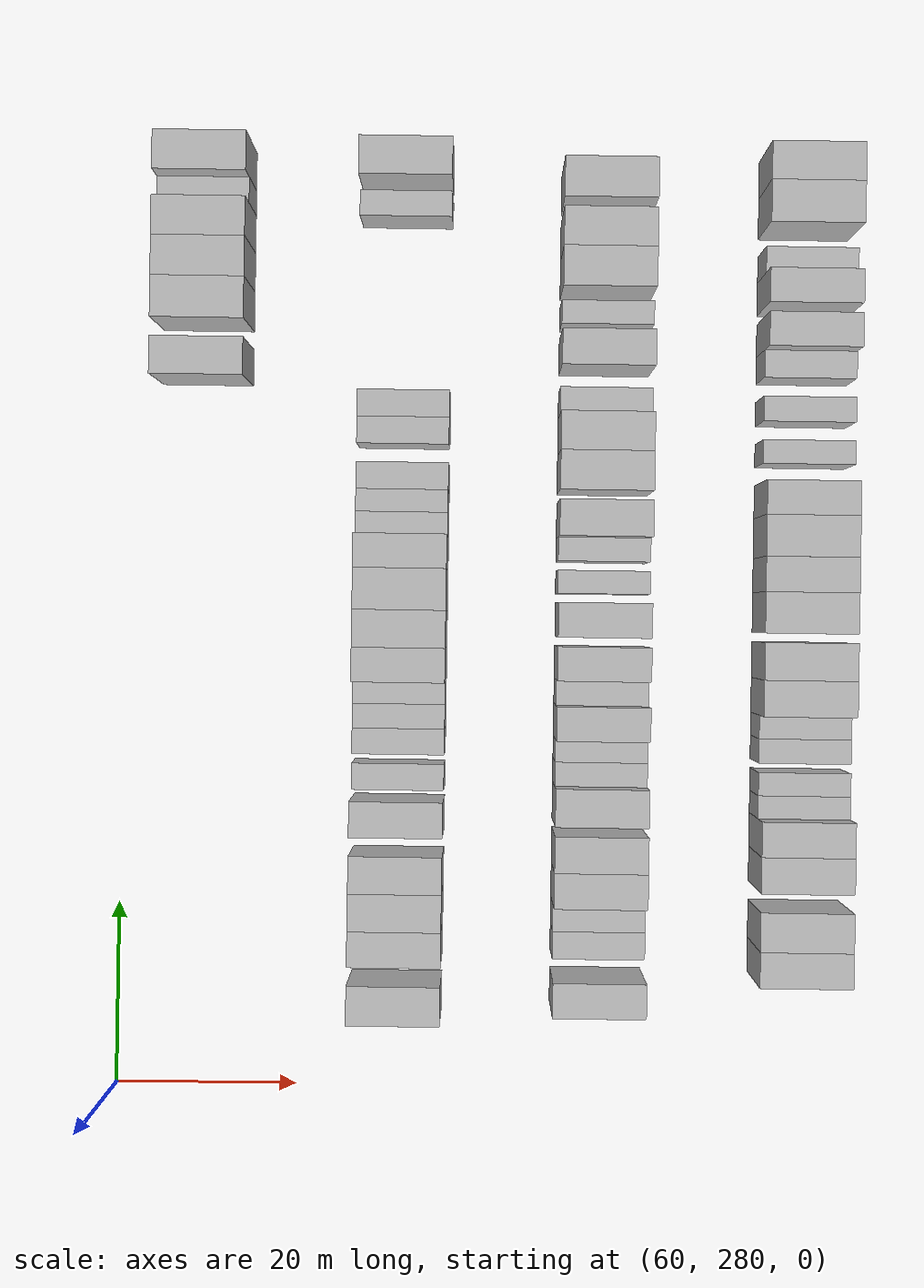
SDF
<sdf version="1.6">
 <world name="default">
  <model name="building_580">
   <static>1</static>
   <pose>69.0000 359.6786 0 0.000000 0.000000 0.000000</pose>
   <link name="link">
    <pose>0 0 4.50 0 0 0</pose>
    <collision name="collision"><geometry><box><size>10.0000 4.0316 9.0000</size></box></geometry></collision>
    <visual name="visual">
     <cast_shadows>0</cast_shadows>
     <geometry><box><size>10.0000 4.0316 9.0000</size></box></geometry>
     <material>
      <script>
       <uri>model://HANNAS_wall/materials/scripts</uri>
       <uri>model://HANNAS_wall/materials/textures</uri>
       <name>vrc/HANNAS_wall</name>
      </script>
     </material>
    </visual>
   </link>
  </model>
  <model name="building_581">
   <static>1</static>
   <pose>69.0000 365.9146 0 0.000000 0.000000 0.000000</pose>
   <link name="link">
    <pose>0 0 4.50 0 0 0</pose>
    <collision name="collision"><geometry><box><size>10.0000 4.4406 9.0000</size></box></geometry></collision>
    <visual name="visual">
     <cast_shadows>0</cast_shadows>
     <geometry><box><size>10.0000 4.4406 9.0000</size></box></geometry>
     <material>
      <script>
       <uri>model://HANNAS_wall/materials/scripts</uri>
       <uri>model://HANNAS_wall/materials/textures</uri>
       <name>vrc/HANNAS_wall</name>
      </script>
     </material>
    </visual>
   </link>
  </model>
  <model name="building_582">
   <static>1</static>
   <pose>69.0000 370.2883 0 0.000000 0.000000 0.000000</pose>
   <link name="link">
    <pose>0 0 4.50 0 0 0</pose>
    <collision name="collision"><geometry><box><size>10.0000 4.3068 9.0000</size></box></geometry></collision>
    <visual name="visual">
     <cast_shadows>0</cast_shadows>
     <geometry><box><size>10.0000 4.3068 9.0000</size></box></geometry>
     <material>
      <script>
       <uri>model://HANNAS_wall/materials/scripts</uri>
       <uri>model://HANNAS_wall/materials/textures</uri>
       <name>vrc/HANNAS_wall</name>
      </script>
     </material>
    </visual>
   </link>
  </model>
  <model name="building_583">
   <static>1</static>
   <pose>69.0000 374.5498 0 0.000000 0.000000 0.000000</pose>
   <link name="link">
    <pose>0 0 4.50 0 0 0</pose>
    <collision name="collision"><geometry><box><size>10.0000 4.2161 9.0000</size></box></geometry></collision>
    <visual name="visual">
     <cast_shadows>0</cast_shadows>
     <geometry><box><size>10.0000 4.2161 9.0000</size></box></geometry>
     <material>
      <script>
       <uri>model://HANNAS_wall/materials/scripts</uri>
       <uri>model://HANNAS_wall/materials/textures</uri>
       <name>vrc/HANNAS_wall</name>
      </script>
     </material>
    </visual>
   </link>
  </model>
  <model name="building_584">
   <static>1</static>
   <pose>69.0000 378.0378 0 0.000000 0.000000 0.000000</pose>
   <link name="link">
    <pose>0 0 3.00 0 0 0</pose>
    <collision name="collision"><geometry><box><size>10.0000 2.7599 6.0000</size></box></geometry></collision>
    <visual name="visual">
     <cast_shadows>0</cast_shadows>
     <geometry><box><size>10.0000 2.7599 6.0000</size></box></geometry>
     <material>
      <script>
       <uri>model://HANNAS_wall/materials/scripts</uri>
       <uri>model://HANNAS_wall/materials/textures</uri>
       <name>vrc/HANNAS_wall</name>
      </script>
     </material>
    </visual>
   </link>
  </model>
  <model name="building_585">
   <static>1</static>
   <pose>69.0000 381.5200 0 0.000000 0.000000 0.000000</pose>
   <link name="link">
    <pose>0 0 4.50 0 0 0</pose>
    <collision name="collision"><geometry><box><size>10.0000 4.2044 9.0000</size></box></geometry></collision>
    <visual name="visual">
     <cast_shadows>0</cast_shadows>
     <geometry><box><size>10.0000 4.2044 9.0000</size></box></geometry>
     <material>
      <script>
       <uri>model://HANNAS_wall/materials/scripts</uri>
       <uri>model://HANNAS_wall/materials/textures</uri>
       <name>vrc/HANNAS_wall</name>
      </script>
     </material>
    </visual>
   </link>
  </model>
  <model name="building_759">
   <static>1</static>
   <pose>91.0000 290.7322 0 0.000000 0.000000 0.000000</pose>
   <link name="link">
    <pose>0 0 4.50 0 0 0</pose>
    <collision name="collision"><geometry><box><size>10.0000 4.2007 9.0000</size></box></geometry></collision>
    <visual name="visual">
     <cast_shadows>0</cast_shadows>
     <geometry><box><size>10.0000 4.2007 9.0000</size></box></geometry>
     <material>
      <script>
       <uri>model://HANNAS_wall/materials/scripts</uri>
       <uri>model://HANNAS_wall/materials/textures</uri>
       <name>vrc/HANNAS_wall</name>
      </script>
     </material>
    </visual>
   </link>
  </model>
  <model name="building_760">
   <static>1</static>
   <pose>91.0000 296.7273 0 0.000000 0.000000 0.000000</pose>
   <link name="link">
    <pose>0 0 4.50 0 0 0</pose>
    <collision name="collision"><geometry><box><size>10.0000 3.7895 9.0000</size></box></geometry></collision>
    <visual name="visual">
     <cast_shadows>0</cast_shadows>
     <geometry><box><size>10.0000 3.7895 9.0000</size></box></geometry>
     <material>
      <script>
       <uri>model://HANNAS_wall/materials/scripts</uri>
       <uri>model://HANNAS_wall/materials/textures</uri>
       <name>vrc/HANNAS_wall</name>
      </script>
     </material>
    </visual>
   </link>
  </model>
  <model name="building_761">
   <static>1</static>
   <pose>91.0000 300.6268 0 0.000000 0.000000 0.000000</pose>
   <link name="link">
    <pose>0 0 4.50 0 0 0</pose>
    <collision name="collision"><geometry><box><size>10.0000 4.0096 9.0000</size></box></geometry></collision>
    <visual name="visual">
     <cast_shadows>0</cast_shadows>
     <geometry><box><size>10.0000 4.0096 9.0000</size></box></geometry>
     <material>
      <script>
       <uri>model://HANNAS_wall/materials/scripts</uri>
       <uri>model://HANNAS_wall/materials/textures</uri>
       <name>vrc/HANNAS_wall</name>
      </script>
     </material>
    </visual>
   </link>
  </model>
  <model name="building_762">
   <static>1</static>
   <pose>91.0000 304.6344 0 0.000000 0.000000 0.000000</pose>
   <link name="link">
    <pose>0 0 4.50 0 0 0</pose>
    <collision name="collision"><geometry><box><size>10.0000 4.0055 9.0000</size></box></geometry></collision>
    <visual name="visual">
     <cast_shadows>0</cast_shadows>
     <geometry><box><size>10.0000 4.0055 9.0000</size></box></geometry>
     <material>
      <script>
       <uri>model://HANNAS_wall/materials/scripts</uri>
       <uri>model://HANNAS_wall/materials/textures</uri>
       <name>vrc/HANNAS_wall</name>
      </script>
     </material>
    </visual>
   </link>
  </model>
  <model name="building_763">
   <static>1</static>
   <pose>91.0000 310.5492 0 0.000000 0.000000 0.000000</pose>
   <link name="link">
    <pose>0 0 4.50 0 0 0</pose>
    <collision name="collision"><geometry><box><size>10.0000 3.8241 9.0000</size></box></geometry></collision>
    <visual name="visual">
     <cast_shadows>0</cast_shadows>
     <geometry><box><size>10.0000 3.8241 9.0000</size></box></geometry>
     <material>
      <script>
       <uri>model://HANNAS_wall/materials/scripts</uri>
       <uri>model://HANNAS_wall/materials/textures</uri>
       <name>vrc/HANNAS_wall</name>
      </script>
     </material>
    </visual>
   </link>
  </model>
  <model name="building_764">
   <static>1</static>
   <pose>91.0000 314.8892 0 0.000000 0.000000 0.000000</pose>
   <link name="link">
    <pose>0 0 3.00 0 0 0</pose>
    <collision name="collision"><geometry><box><size>10.0000 2.8561 6.0000</size></box></geometry></collision>
    <visual name="visual">
     <cast_shadows>0</cast_shadows>
     <geometry><box><size>10.0000 2.8561 6.0000</size></box></geometry>
     <material>
      <script>
       <uri>model://HANNAS_wall/materials/scripts</uri>
       <uri>model://HANNAS_wall/materials/textures</uri>
       <name>vrc/HANNAS_wall</name>
      </script>
     </material>
    </visual>
   </link>
  </model>
  <model name="building_765">
   <static>1</static>
   <pose>91.0000 318.7162 0 0.000000 0.000000 0.000000</pose>
   <link name="link">
    <pose>0 0 3.00 0 0 0</pose>
    <collision name="collision"><geometry><box><size>10.0000 2.7978 6.0000</size></box></geometry></collision>
    <visual name="visual">
     <cast_shadows>0</cast_shadows>
     <geometry><box><size>10.0000 2.7978 6.0000</size></box></geometry>
     <material>
      <script>
       <uri>model://HANNAS_wall/materials/scripts</uri>
       <uri>model://HANNAS_wall/materials/textures</uri>
       <name>vrc/HANNAS_wall</name>
      </script>
     </material>
    </visual>
   </link>
  </model>
  <model name="building_766">
   <static>1</static>
   <pose>91.0000 321.4469 0 0.000000 0.000000 0.000000</pose>
   <link name="link">
    <pose>0 0 3.00 0 0 0</pose>
    <collision name="collision"><geometry><box><size>10.0000 2.6637 6.0000</size></box></geometry></collision>
    <visual name="visual">
     <cast_shadows>0</cast_shadows>
     <geometry><box><size>10.0000 2.6637 6.0000</size></box></geometry>
     <material>
      <script>
       <uri>model://HANNAS_wall/materials/scripts</uri>
       <uri>model://HANNAS_wall/materials/textures</uri>
       <name>vrc/HANNAS_wall</name>
      </script>
     </material>
    </visual>
   </link>
  </model>
  <model name="building_767">
   <static>1</static>
   <pose>91.0000 323.9887 0 0.000000 0.000000 0.000000</pose>
   <link name="link">
    <pose>0 0 3.00 0 0 0</pose>
    <collision name="collision"><geometry><box><size>10.0000 2.4199 6.0000</size></box></geometry></collision>
    <visual name="visual">
     <cast_shadows>0</cast_shadows>
     <geometry><box><size>10.0000 2.4199 6.0000</size></box></geometry>
     <material>
      <script>
       <uri>model://HANNAS_wall/materials/scripts</uri>
       <uri>model://HANNAS_wall/materials/textures</uri>
       <name>vrc/HANNAS_wall</name>
      </script>
     </material>
    </visual>
   </link>
  </model>
  <model name="building_768">
   <static>1</static>
   <pose>91.0000 327.0437 0 0.000000 0.000000 0.000000</pose>
   <link name="link">
    <pose>0 0 4.50 0 0 0</pose>
    <collision name="collision"><geometry><box><size>10.0000 3.6902 9.0000</size></box></geometry></collision>
    <visual name="visual">
     <cast_shadows>0</cast_shadows>
     <geometry><box><size>10.0000 3.6902 9.0000</size></box></geometry>
     <material>
      <script>
       <uri>model://HANNAS_wall/materials/scripts</uri>
       <uri>model://HANNAS_wall/materials/textures</uri>
       <name>vrc/HANNAS_wall</name>
      </script>
     </material>
    </visual>
   </link>
  </model>
  <model name="building_769">
   <static>1</static>
   <pose>91.0000 330.9091 0 0.000000 0.000000 0.000000</pose>
   <link name="link">
    <pose>0 0 4.50 0 0 0</pose>
    <collision name="collision"><geometry><box><size>10.0000 4.0407 9.0000</size></box></geometry></collision>
    <visual name="visual">
     <cast_shadows>0</cast_shadows>
     <geometry><box><size>10.0000 4.0407 9.0000</size></box></geometry>
     <material>
      <script>
       <uri>model://HANNAS_wall/materials/scripts</uri>
       <uri>model://HANNAS_wall/materials/textures</uri>
       <name>vrc/HANNAS_wall</name>
      </script>
     </material>
    </visual>
   </link>
  </model>
  <model name="building_770">
   <static>1</static>
   <pose>91.0000 335.1592 0 0.000000 0.000000 0.000000</pose>
   <link name="link">
    <pose>0 0 4.50 0 0 0</pose>
    <collision name="collision"><geometry><box><size>10.0000 4.4594 9.0000</size></box></geometry></collision>
    <visual name="visual">
     <cast_shadows>0</cast_shadows>
     <geometry><box><size>10.0000 4.4594 9.0000</size></box></geometry>
     <material>
      <script>
       <uri>model://HANNAS_wall/materials/scripts</uri>
       <uri>model://HANNAS_wall/materials/textures</uri>
       <name>vrc/HANNAS_wall</name>
      </script>
     </material>
    </visual>
   </link>
  </model>
  <model name="building_771">
   <static>1</static>
   <pose>91.0000 339.2247 0 0.000000 0.000000 0.000000</pose>
   <link name="link">
    <pose>0 0 4.50 0 0 0</pose>
    <collision name="collision"><geometry><box><size>10.0000 3.6718 9.0000</size></box></geometry></collision>
    <visual name="visual">
     <cast_shadows>0</cast_shadows>
     <geometry><box><size>10.0000 3.6718 9.0000</size></box></geometry>
     <material>
      <script>
       <uri>model://HANNAS_wall/materials/scripts</uri>
       <uri>model://HANNAS_wall/materials/textures</uri>
       <name>vrc/HANNAS_wall</name>
      </script>
     </material>
    </visual>
   </link>
  </model>
  <model name="building_772">
   <static>1</static>
   <pose>91.0000 342.3003 0 0.000000 0.000000 0.000000</pose>
   <link name="link">
    <pose>0 0 3.00 0 0 0</pose>
    <collision name="collision"><geometry><box><size>10.0000 2.4792 6.0000</size></box></geometry></collision>
    <visual name="visual">
     <cast_shadows>0</cast_shadows>
     <geometry><box><size>10.0000 2.4792 6.0000</size></box></geometry>
     <material>
      <script>
       <uri>model://HANNAS_wall/materials/scripts</uri>
       <uri>model://HANNAS_wall/materials/textures</uri>
       <name>vrc/HANNAS_wall</name>
      </script>
     </material>
    </visual>
   </link>
  </model>
  <model name="building_773">
   <static>1</static>
   <pose>91.0000 344.7650 0 0.000000 0.000000 0.000000</pose>
   <link name="link">
    <pose>0 0 3.00 0 0 0</pose>
    <collision name="collision"><geometry><box><size>10.0000 2.4502 6.0000</size></box></geometry></collision>
    <visual name="visual">
     <cast_shadows>0</cast_shadows>
     <geometry><box><size>10.0000 2.4502 6.0000</size></box></geometry>
     <material>
      <script>
       <uri>model://HANNAS_wall/materials/scripts</uri>
       <uri>model://HANNAS_wall/materials/textures</uri>
       <name>vrc/HANNAS_wall</name>
      </script>
     </material>
    </visual>
   </link>
  </model>
  <model name="building_774">
   <static>1</static>
   <pose>91.0000 347.4482 0 0.000000 0.000000 0.000000</pose>
   <link name="link">
    <pose>0 0 3.00 0 0 0</pose>
    <collision name="collision"><geometry><box><size>10.0000 2.9163 6.0000</size></box></geometry></collision>
    <visual name="visual">
     <cast_shadows>0</cast_shadows>
     <geometry><box><size>10.0000 2.9163 6.0000</size></box></geometry>
     <material>
      <script>
       <uri>model://HANNAS_wall/materials/scripts</uri>
       <uri>model://HANNAS_wall/materials/textures</uri>
       <name>vrc/HANNAS_wall</name>
      </script>
     </material>
    </visual>
   </link>
  </model>
  <model name="building_775">
   <static>1</static>
   <pose>91.0000 352.3681 0 0.000000 0.000000 0.000000</pose>
   <link name="link">
    <pose>0 0 3.00 0 0 0</pose>
    <collision name="collision"><geometry><box><size>10.0000 2.9234 6.0000</size></box></geometry></collision>
    <visual name="visual">
     <cast_shadows>0</cast_shadows>
     <geometry><box><size>10.0000 2.9234 6.0000</size></box></geometry>
     <material>
      <script>
       <uri>model://HANNAS_wall/materials/scripts</uri>
       <uri>model://HANNAS_wall/materials/textures</uri>
       <name>vrc/HANNAS_wall</name>
      </script>
     </material>
    </visual>
   </link>
  </model>
  <model name="building_776">
   <static>1</static>
   <pose>91.0000 355.2858 0 0.000000 0.000000 0.000000</pose>
   <link name="link">
    <pose>0 0 3.00 0 0 0</pose>
    <collision name="collision"><geometry><box><size>10.0000 2.9120 6.0000</size></box></geometry></collision>
    <visual name="visual">
     <cast_shadows>0</cast_shadows>
     <geometry><box><size>10.0000 2.9120 6.0000</size></box></geometry>
     <material>
      <script>
       <uri>model://HANNAS_wall/materials/scripts</uri>
       <uri>model://HANNAS_wall/materials/textures</uri>
       <name>vrc/HANNAS_wall</name>
      </script>
     </material>
    </visual>
   </link>
  </model>
  <model name="building_777">
   <static>1</static>
   <pose>91.0000 376.8713 0 0.000000 0.000000 0.000000</pose>
   <link name="link">
    <pose>0 0 3.00 0 0 0</pose>
    <collision name="collision"><geometry><box><size>10.0000 2.7530 6.0000</size></box></geometry></collision>
    <visual name="visual">
     <cast_shadows>0</cast_shadows>
     <geometry><box><size>10.0000 2.7530 6.0000</size></box></geometry>
     <material>
      <script>
       <uri>model://HANNAS_wall/materials/scripts</uri>
       <uri>model://HANNAS_wall/materials/textures</uri>
       <name>vrc/HANNAS_wall</name>
      </script>
     </material>
    </visual>
   </link>
  </model>
  <model name="building_778">
   <static>1</static>
   <pose>91.0000 381.2882 0 0.000000 0.000000 0.000000</pose>
   <link name="link">
    <pose>0 0 4.50 0 0 0</pose>
    <collision name="collision"><geometry><box><size>10.0000 4.0808 9.0000</size></box></geometry></collision>
    <visual name="visual">
     <cast_shadows>0</cast_shadows>
     <geometry><box><size>10.0000 4.0808 9.0000</size></box></geometry>
     <material>
      <script>
       <uri>model://HANNAS_wall/materials/scripts</uri>
       <uri>model://HANNAS_wall/materials/textures</uri>
       <name>vrc/HANNAS_wall</name>
      </script>
     </material>
    </visual>
   </link>
  </model>
  <model name="building_945">
   <static>1</static>
   <pose>113.0000 291.6174 0 0.000000 0.000000 0.000000</pose>
   <link name="link">
    <pose>0 0 4.50 0 0 0</pose>
    <collision name="collision"><geometry><box><size>10.0000 3.7328 9.0000</size></box></geometry></collision>
    <visual name="visual">
     <cast_shadows>0</cast_shadows>
     <geometry><box><size>10.0000 3.7328 9.0000</size></box></geometry>
     <material>
      <script>
       <uri>model://HANNAS_wall/materials/scripts</uri>
       <uri>model://HANNAS_wall/materials/textures</uri>
       <name>vrc/HANNAS_wall</name>
      </script>
     </material>
    </visual>
   </link>
  </model>
  <model name="building_946">
   <static>1</static>
   <pose>113.0000 296.9633 0 0.000000 0.000000 0.000000</pose>
   <link name="link">
    <pose>0 0 3.00 0 0 0</pose>
    <collision name="collision"><geometry><box><size>10.0000 2.9590 6.0000</size></box></geometry></collision>
    <visual name="visual">
     <cast_shadows>0</cast_shadows>
     <geometry><box><size>10.0000 2.9590 6.0000</size></box></geometry>
     <material>
      <script>
       <uri>model://HANNAS_wall/materials/scripts</uri>
       <uri>model://HANNAS_wall/materials/textures</uri>
       <name>vrc/HANNAS_wall</name>
      </script>
     </material>
    </visual>
   </link>
  </model>
  <model name="building_947">
   <static>1</static>
   <pose>113.0000 299.9034 0 0.000000 0.000000 0.000000</pose>
   <link name="link">
    <pose>0 0 3.00 0 0 0</pose>
    <collision name="collision"><geometry><box><size>10.0000 2.9214 6.0000</size></box></geometry></collision>
    <visual name="visual">
     <cast_shadows>0</cast_shadows>
     <geometry><box><size>10.0000 2.9214 6.0000</size></box></geometry>
     <material>
      <script>
       <uri>model://HANNAS_wall/materials/scripts</uri>
       <uri>model://HANNAS_wall/materials/textures</uri>
       <name>vrc/HANNAS_wall</name>
      </script>
     </material>
    </visual>
   </link>
  </model>
  <model name="building_948">
   <static>1</static>
   <pose>113.0000 303.2618 0 0.000000 0.000000 0.000000</pose>
   <link name="link">
    <pose>0 0 4.50 0 0 0</pose>
    <collision name="collision"><geometry><box><size>10.0000 3.7954 9.0000</size></box></geometry></collision>
    <visual name="visual">
     <cast_shadows>0</cast_shadows>
     <geometry><box><size>10.0000 3.7954 9.0000</size></box></geometry>
     <material>
      <script>
       <uri>model://HANNAS_wall/materials/scripts</uri>
       <uri>model://HANNAS_wall/materials/textures</uri>
       <name>vrc/HANNAS_wall</name>
      </script>
     </material>
    </visual>
   </link>
  </model>
  <model name="building_949">
   <static>1</static>
   <pose>113.0000 307.1071 0 0.000000 0.000000 0.000000</pose>
   <link name="link">
    <pose>0 0 4.50 0 0 0</pose>
    <collision name="collision"><geometry><box><size>10.0000 3.8952 9.0000</size></box></geometry></collision>
    <visual name="visual">
     <cast_shadows>0</cast_shadows>
     <geometry><box><size>10.0000 3.8952 9.0000</size></box></geometry>
     <material>
      <script>
       <uri>model://HANNAS_wall/materials/scripts</uri>
       <uri>model://HANNAS_wall/materials/textures</uri>
       <name>vrc/HANNAS_wall</name>
      </script>
     </material>
    </visual>
   </link>
  </model>
  <model name="building_950">
   <static>1</static>
   <pose>113.0000 312.0935 0 0.000000 0.000000 0.000000</pose>
   <link name="link">
    <pose>0 0 4.50 0 0 0</pose>
    <collision name="collision"><geometry><box><size>10.0000 4.0777 9.0000</size></box></geometry></collision>
    <visual name="visual">
     <cast_shadows>0</cast_shadows>
     <geometry><box><size>10.0000 4.0777 9.0000</size></box></geometry>
     <material>
      <script>
       <uri>model://HANNAS_wall/materials/scripts</uri>
       <uri>model://HANNAS_wall/materials/textures</uri>
       <name>vrc/HANNAS_wall</name>
      </script>
     </material>
    </visual>
   </link>
  </model>
  <model name="building_951">
   <static>1</static>
   <pose>113.0000 315.4445 0 0.000000 0.000000 0.000000</pose>
   <link name="link">
    <pose>0 0 3.00 0 0 0</pose>
    <collision name="collision"><geometry><box><size>10.0000 2.6243 6.0000</size></box></geometry></collision>
    <visual name="visual">
     <cast_shadows>0</cast_shadows>
     <geometry><box><size>10.0000 2.6243 6.0000</size></box></geometry>
     <material>
      <script>
       <uri>model://HANNAS_wall/materials/scripts</uri>
       <uri>model://HANNAS_wall/materials/textures</uri>
       <name>vrc/HANNAS_wall</name>
      </script>
     </material>
    </visual>
   </link>
  </model>
  <model name="building_952">
   <static>1</static>
   <pose>113.0000 317.9788 0 0.000000 0.000000 0.000000</pose>
   <link name="link">
    <pose>0 0 3.00 0 0 0</pose>
    <collision name="collision"><geometry><box><size>10.0000 2.4442 6.0000</size></box></geometry></collision>
    <visual name="visual">
     <cast_shadows>0</cast_shadows>
     <geometry><box><size>10.0000 2.4442 6.0000</size></box></geometry>
     <material>
      <script>
       <uri>model://HANNAS_wall/materials/scripts</uri>
       <uri>model://HANNAS_wall/materials/textures</uri>
       <name>vrc/HANNAS_wall</name>
      </script>
     </material>
    </visual>
   </link>
  </model>
  <model name="building_953">
   <static>1</static>
   <pose>113.0000 321.0409 0 0.000000 0.000000 0.000000</pose>
   <link name="link">
    <pose>0 0 4.50 0 0 0</pose>
    <collision name="collision"><geometry><box><size>10.0000 3.6800 9.0000</size></box></geometry></collision>
    <visual name="visual">
     <cast_shadows>0</cast_shadows>
     <geometry><box><size>10.0000 3.6800 9.0000</size></box></geometry>
     <material>
      <script>
       <uri>model://HANNAS_wall/materials/scripts</uri>
       <uri>model://HANNAS_wall/materials/textures</uri>
       <name>vrc/HANNAS_wall</name>
      </script>
     </material>
    </visual>
   </link>
  </model>
  <model name="building_954">
   <static>1</static>
   <pose>113.0000 324.2464 0 0.000000 0.000000 0.000000</pose>
   <link name="link">
    <pose>0 0 3.00 0 0 0</pose>
    <collision name="collision"><geometry><box><size>10.0000 2.7311 6.0000</size></box></geometry></collision>
    <visual name="visual">
     <cast_shadows>0</cast_shadows>
     <geometry><box><size>10.0000 2.7311 6.0000</size></box></geometry>
     <material>
      <script>
       <uri>model://HANNAS_wall/materials/scripts</uri>
       <uri>model://HANNAS_wall/materials/textures</uri>
       <name>vrc/HANNAS_wall</name>
      </script>
     </material>
    </visual>
   </link>
  </model>
  <model name="building_955">
   <static>1</static>
   <pose>113.0000 327.4456 0 0.000000 0.000000 0.000000</pose>
   <link name="link">
    <pose>0 0 4.50 0 0 0</pose>
    <collision name="collision"><geometry><box><size>10.0000 3.6673 9.0000</size></box></geometry></collision>
    <visual name="visual">
     <cast_shadows>0</cast_shadows>
     <geometry><box><size>10.0000 3.6673 9.0000</size></box></geometry>
     <material>
      <script>
       <uri>model://HANNAS_wall/materials/scripts</uri>
       <uri>model://HANNAS_wall/materials/textures</uri>
       <name>vrc/HANNAS_wall</name>
      </script>
     </material>
    </visual>
   </link>
  </model>
  <model name="building_956">
   <static>1</static>
   <pose>113.0000 332.1404 0 0.000000 0.000000 0.000000</pose>
   <link name="link">
    <pose>0 0 4.50 0 0 0</pose>
    <collision name="collision"><geometry><box><size>10.0000 3.7222 9.0000</size></box></geometry></collision>
    <visual name="visual">
     <cast_shadows>0</cast_shadows>
     <geometry><box><size>10.0000 3.7222 9.0000</size></box></geometry>
     <material>
      <script>
       <uri>model://HANNAS_wall/materials/scripts</uri>
       <uri>model://HANNAS_wall/materials/textures</uri>
       <name>vrc/HANNAS_wall</name>
      </script>
     </material>
    </visual>
   </link>
  </model>
  <model name="building_957">
   <static>1</static>
   <pose>113.0000 336.2522 0 0.000000 0.000000 0.000000</pose>
   <link name="link">
    <pose>0 0 3.00 0 0 0</pose>
    <collision name="collision"><geometry><box><size>10.0000 2.5015 6.0000</size></box></geometry></collision>
    <visual name="visual">
     <cast_shadows>0</cast_shadows>
     <geometry><box><size>10.0000 2.5015 6.0000</size></box></geometry>
     <material>
      <script>
       <uri>model://HANNAS_wall/materials/scripts</uri>
       <uri>model://HANNAS_wall/materials/textures</uri>
       <name>vrc/HANNAS_wall</name>
      </script>
     </material>
    </visual>
   </link>
  </model>
  <model name="building_958">
   <static>1</static>
   <pose>113.0000 339.8034 0 0.000000 0.000000 0.000000</pose>
   <link name="link">
    <pose>0 0 3.00 0 0 0</pose>
    <collision name="collision"><geometry><box><size>10.0000 2.6009 6.0000</size></box></geometry></collision>
    <visual name="visual">
     <cast_shadows>0</cast_shadows>
     <geometry><box><size>10.0000 2.6009 6.0000</size></box></geometry>
     <material>
      <script>
       <uri>model://HANNAS_wall/materials/scripts</uri>
       <uri>model://HANNAS_wall/materials/textures</uri>
       <name>vrc/HANNAS_wall</name>
      </script>
     </material>
    </visual>
   </link>
  </model>
  <model name="building_959">
   <static>1</static>
   <pose>113.0000 343.0598 0 0.000000 0.000000 0.000000</pose>
   <link name="link">
    <pose>0 0 4.50 0 0 0</pose>
    <collision name="collision"><geometry><box><size>10.0000 3.9118 9.0000</size></box></geometry></collision>
    <visual name="visual">
     <cast_shadows>0</cast_shadows>
     <geometry><box><size>10.0000 3.9118 9.0000</size></box></geometry>
     <material>
      <script>
       <uri>model://HANNAS_wall/materials/scripts</uri>
       <uri>model://HANNAS_wall/materials/textures</uri>
       <name>vrc/HANNAS_wall</name>
      </script>
     </material>
    </visual>
   </link>
  </model>
  <model name="building_960">
   <static>1</static>
   <pose>113.0000 348.1364 0 0.000000 0.000000 0.000000</pose>
   <link name="link">
    <pose>0 0 4.50 0 0 0</pose>
    <collision name="collision"><geometry><box><size>10.0000 4.2415 9.0000</size></box></geometry></collision>
    <visual name="visual">
     <cast_shadows>0</cast_shadows>
     <geometry><box><size>10.0000 4.2415 9.0000</size></box></geometry>
     <material>
      <script>
       <uri>model://HANNAS_wall/materials/scripts</uri>
       <uri>model://HANNAS_wall/materials/textures</uri>
       <name>vrc/HANNAS_wall</name>
      </script>
     </material>
    </visual>
   </link>
  </model>
  <model name="building_961">
   <static>1</static>
   <pose>113.0000 352.3385 0 0.000000 0.000000 0.000000</pose>
   <link name="link">
    <pose>0 0 4.50 0 0 0</pose>
    <collision name="collision"><geometry><box><size>10.0000 4.1628 9.0000</size></box></geometry></collision>
    <visual name="visual">
     <cast_shadows>0</cast_shadows>
     <geometry><box><size>10.0000 4.1628 9.0000</size></box></geometry>
     <material>
      <script>
       <uri>model://HANNAS_wall/materials/scripts</uri>
       <uri>model://HANNAS_wall/materials/textures</uri>
       <name>vrc/HANNAS_wall</name>
      </script>
     </material>
    </visual>
   </link>
  </model>
  <model name="building_962">
   <static>1</static>
   <pose>113.0000 355.8760 0 0.000000 0.000000 0.000000</pose>
   <link name="link">
    <pose>0 0 3.00 0 0 0</pose>
    <collision name="collision"><geometry><box><size>10.0000 2.9122 6.0000</size></box></geometry></collision>
    <visual name="visual">
     <cast_shadows>0</cast_shadows>
     <geometry><box><size>10.0000 2.9122 6.0000</size></box></geometry>
     <material>
      <script>
       <uri>model://HANNAS_wall/materials/scripts</uri>
       <uri>model://HANNAS_wall/materials/textures</uri>
       <name>vrc/HANNAS_wall</name>
      </script>
     </material>
    </visual>
   </link>
  </model>
  <model name="building_963">
   <static>1</static>
   <pose>113.0000 361.2533 0 0.000000 0.000000 0.000000</pose>
   <link name="link">
    <pose>0 0 4.50 0 0 0</pose>
    <collision name="collision"><geometry><box><size>10.0000 3.8423 9.0000</size></box></geometry></collision>
    <visual name="visual">
     <cast_shadows>0</cast_shadows>
     <geometry><box><size>10.0000 3.8423 9.0000</size></box></geometry>
     <material>
      <script>
       <uri>model://HANNAS_wall/materials/scripts</uri>
       <uri>model://HANNAS_wall/materials/textures</uri>
       <name>vrc/HANNAS_wall</name>
      </script>
     </material>
    </visual>
   </link>
  </model>
  <model name="building_964">
   <static>1</static>
   <pose>113.0000 365.4408 0 0.000000 0.000000 0.000000</pose>
   <link name="link">
    <pose>0 0 3.00 0 0 0</pose>
    <collision name="collision"><geometry><box><size>10.0000 2.5326 6.0000</size></box></geometry></collision>
    <visual name="visual">
     <cast_shadows>0</cast_shadows>
     <geometry><box><size>10.0000 2.5326 6.0000</size></box></geometry>
     <material>
      <script>
       <uri>model://HANNAS_wall/materials/scripts</uri>
       <uri>model://HANNAS_wall/materials/textures</uri>
       <name>vrc/HANNAS_wall</name>
      </script>
     </material>
    </visual>
   </link>
  </model>
  <model name="building_965">
   <static>1</static>
   <pose>113.0000 369.8531 0 0.000000 0.000000 0.000000</pose>
   <link name="link">
    <pose>0 0 4.50 0 0 0</pose>
    <collision name="collision"><geometry><box><size>10.0000 4.2920 9.0000</size></box></geometry></collision>
    <visual name="visual">
     <cast_shadows>0</cast_shadows>
     <geometry><box><size>10.0000 4.2920 9.0000</size></box></geometry>
     <material>
      <script>
       <uri>model://HANNAS_wall/materials/scripts</uri>
       <uri>model://HANNAS_wall/materials/textures</uri>
       <name>vrc/HANNAS_wall</name>
      </script>
     </material>
    </visual>
   </link>
  </model>
  <model name="building_966">
   <static>1</static>
   <pose>113.0000 374.0861 0 0.000000 0.000000 0.000000</pose>
   <link name="link">
    <pose>0 0 4.50 0 0 0</pose>
    <collision name="collision"><geometry><box><size>10.0000 4.1740 9.0000</size></box></geometry></collision>
    <visual name="visual">
     <cast_shadows>0</cast_shadows>
     <geometry><box><size>10.0000 4.1740 9.0000</size></box></geometry>
     <material>
      <script>
       <uri>model://HANNAS_wall/materials/scripts</uri>
       <uri>model://HANNAS_wall/materials/textures</uri>
       <name>vrc/HANNAS_wall</name>
      </script>
     </material>
    </visual>
   </link>
  </model>
  <model name="building_967">
   <static>1</static>
   <pose>113.0000 379.3355 0 0.000000 0.000000 0.000000</pose>
   <link name="link">
    <pose>0 0 4.50 0 0 0</pose>
    <collision name="collision"><geometry><box><size>10.0000 4.3249 9.0000</size></box></geometry></collision>
    <visual name="visual">
     <cast_shadows>0</cast_shadows>
     <geometry><box><size>10.0000 4.3249 9.0000</size></box></geometry>
     <material>
      <script>
       <uri>model://HANNAS_wall/materials/scripts</uri>
       <uri>model://HANNAS_wall/materials/textures</uri>
       <name>vrc/HANNAS_wall</name>
      </script>
     </material>
    </visual>
   </link>
  </model>
  <model name="building_1121">
   <static>1</static>
   <pose>135.0000 295.1946 0 0.000000 0.000000 0.000000</pose>
   <link name="link">
    <pose>0 0 4.50 0 0 0</pose>
    <collision name="collision"><geometry><box><size>10.0000 3.8118 9.0000</size></box></geometry></collision>
    <visual name="visual">
     <cast_shadows>0</cast_shadows>
     <geometry><box><size>10.0000 3.8118 9.0000</size></box></geometry>
     <material>
      <script>
       <uri>model://HANNAS_wall/materials/scripts</uri>
       <uri>model://HANNAS_wall/materials/textures</uri>
       <name>vrc/HANNAS_wall</name>
      </script>
     </material>
    </visual>
   </link>
  </model>
  <model name="building_1122">
   <static>1</static>
   <pose>135.0000 299.2100 0 0.000000 0.000000 0.000000</pose>
   <link name="link">
    <pose>0 0 4.50 0 0 0</pose>
    <collision name="collision"><geometry><box><size>10.0000 4.2189 9.0000</size></box></geometry></collision>
    <visual name="visual">
     <cast_shadows>0</cast_shadows>
     <geometry><box><size>10.0000 4.2189 9.0000</size></box></geometry>
     <material>
      <script>
       <uri>model://HANNAS_wall/materials/scripts</uri>
       <uri>model://HANNAS_wall/materials/textures</uri>
       <name>vrc/HANNAS_wall</name>
      </script>
     </material>
    </visual>
   </link>
  </model>
  <model name="building_1123">
   <static>1</static>
   <pose>135.0000 305.2621 0 0.000000 0.000000 0.000000</pose>
   <link name="link">
    <pose>0 0 4.50 0 0 0</pose>
    <collision name="collision"><geometry><box><size>10.0000 3.8852 9.0000</size></box></geometry></collision>
    <visual name="visual">
     <cast_shadows>0</cast_shadows>
     <geometry><box><size>10.0000 3.8852 9.0000</size></box></geometry>
     <material>
      <script>
       <uri>model://HANNAS_wall/materials/scripts</uri>
       <uri>model://HANNAS_wall/materials/textures</uri>
       <name>vrc/HANNAS_wall</name>
      </script>
     </material>
    </visual>
   </link>
  </model>
  <model name="building_1124">
   <static>1</static>
   <pose>135.0000 309.0873 0 0.000000 0.000000 0.000000</pose>
   <link name="link">
    <pose>0 0 4.50 0 0 0</pose>
    <collision name="collision"><geometry><box><size>10.0000 3.7653 9.0000</size></box></geometry></collision>
    <visual name="visual">
     <cast_shadows>0</cast_shadows>
     <geometry><box><size>10.0000 3.7653 9.0000</size></box></geometry>
     <material>
      <script>
       <uri>model://HANNAS_wall/materials/scripts</uri>
       <uri>model://HANNAS_wall/materials/textures</uri>
       <name>vrc/HANNAS_wall</name>
      </script>
     </material>
    </visual>
   </link>
  </model>
  <model name="building_1125">
   <static>1</static>
   <pose>135.0000 312.2143 0 0.000000 0.000000 0.000000</pose>
   <link name="link">
    <pose>0 0 3.00 0 0 0</pose>
    <collision name="collision"><geometry><box><size>10.0000 2.4886 6.0000</size></box></geometry></collision>
    <visual name="visual">
     <cast_shadows>0</cast_shadows>
     <geometry><box><size>10.0000 2.4886 6.0000</size></box></geometry>
     <material>
      <script>
       <uri>model://HANNAS_wall/materials/scripts</uri>
       <uri>model://HANNAS_wall/materials/textures</uri>
       <name>vrc/HANNAS_wall</name>
      </script>
     </material>
    </visual>
   </link>
  </model>
  <model name="building_1126">
   <static>1</static>
   <pose>135.0000 314.7140 0 0.000000 0.000000 0.000000</pose>
   <link name="link">
    <pose>0 0 3.00 0 0 0</pose>
    <collision name="collision"><geometry><box><size>10.0000 2.5109 6.0000</size></box></geometry></collision>
    <visual name="visual">
     <cast_shadows>0</cast_shadows>
     <geometry><box><size>10.0000 2.5109 6.0000</size></box></geometry>
     <material>
      <script>
       <uri>model://HANNAS_wall/materials/scripts</uri>
       <uri>model://HANNAS_wall/materials/textures</uri>
       <name>vrc/HANNAS_wall</name>
      </script>
     </material>
    </visual>
   </link>
  </model>
  <model name="building_1127">
   <static>1</static>
   <pose>135.0000 318.2908 0 0.000000 0.000000 0.000000</pose>
   <link name="link">
    <pose>0 0 3.00 0 0 0</pose>
    <collision name="collision"><geometry><box><size>10.0000 2.6426 6.0000</size></box></geometry></collision>
    <visual name="visual">
     <cast_shadows>0</cast_shadows>
     <geometry><box><size>10.0000 2.6426 6.0000</size></box></geometry>
     <material>
      <script>
       <uri>model://HANNAS_wall/materials/scripts</uri>
       <uri>model://HANNAS_wall/materials/textures</uri>
       <name>vrc/HANNAS_wall</name>
      </script>
     </material>
    </visual>
   </link>
  </model>
  <model name="building_1128">
   <static>1</static>
   <pose>135.0000 320.8822 0 0.000000 0.000000 0.000000</pose>
   <link name="link">
    <pose>0 0 3.00 0 0 0</pose>
    <collision name="collision"><geometry><box><size>10.0000 2.5401 6.0000</size></box></geometry></collision>
    <visual name="visual">
     <cast_shadows>0</cast_shadows>
     <geometry><box><size>10.0000 2.5401 6.0000</size></box></geometry>
     <material>
      <script>
       <uri>model://HANNAS_wall/materials/scripts</uri>
       <uri>model://HANNAS_wall/materials/textures</uri>
       <name>vrc/HANNAS_wall</name>
      </script>
     </material>
    </visual>
   </link>
  </model>
  <model name="building_1129">
   <static>1</static>
   <pose>135.0000 324.0978 0 0.000000 0.000000 0.000000</pose>
   <link name="link">
    <pose>0 0 4.50 0 0 0</pose>
    <collision name="collision"><geometry><box><size>10.0000 3.8911 9.0000</size></box></geometry></collision>
    <visual name="visual">
     <cast_shadows>0</cast_shadows>
     <geometry><box><size>10.0000 3.8911 9.0000</size></box></geometry>
     <material>
      <script>
       <uri>model://HANNAS_wall/materials/scripts</uri>
       <uri>model://HANNAS_wall/materials/textures</uri>
       <name>vrc/HANNAS_wall</name>
      </script>
     </material>
    </visual>
   </link>
  </model>
  <model name="building_1130">
   <static>1</static>
   <pose>135.0000 328.0549 0 0.000000 0.000000 0.000000</pose>
   <link name="link">
    <pose>0 0 4.50 0 0 0</pose>
    <collision name="collision"><geometry><box><size>10.0000 4.0231 9.0000</size></box></geometry></collision>
    <visual name="visual">
     <cast_shadows>0</cast_shadows>
     <geometry><box><size>10.0000 4.0231 9.0000</size></box></geometry>
     <material>
      <script>
       <uri>model://HANNAS_wall/materials/scripts</uri>
       <uri>model://HANNAS_wall/materials/textures</uri>
       <name>vrc/HANNAS_wall</name>
      </script>
     </material>
    </visual>
   </link>
  </model>
  <model name="building_1131">
   <static>1</static>
   <pose>135.0000 333.2693 0 0.000000 0.000000 0.000000</pose>
   <link name="link">
    <pose>0 0 4.50 0 0 0</pose>
    <collision name="collision"><geometry><box><size>10.0000 4.4057 9.0000</size></box></geometry></collision>
    <visual name="visual">
     <cast_shadows>0</cast_shadows>
     <geometry><box><size>10.0000 4.4057 9.0000</size></box></geometry>
     <material>
      <script>
       <uri>model://HANNAS_wall/materials/scripts</uri>
       <uri>model://HANNAS_wall/materials/textures</uri>
       <name>vrc/HANNAS_wall</name>
      </script>
     </material>
    </visual>
   </link>
  </model>
  <model name="building_1132">
   <static>1</static>
   <pose>135.0000 337.3616 0 0.000000 0.000000 0.000000</pose>
   <link name="link">
    <pose>0 0 4.50 0 0 0</pose>
    <collision name="collision"><geometry><box><size>10.0000 3.7789 9.0000</size></box></geometry></collision>
    <visual name="visual">
     <cast_shadows>0</cast_shadows>
     <geometry><box><size>10.0000 3.7789 9.0000</size></box></geometry>
     <material>
      <script>
       <uri>model://HANNAS_wall/materials/scripts</uri>
       <uri>model://HANNAS_wall/materials/textures</uri>
       <name>vrc/HANNAS_wall</name>
      </script>
     </material>
    </visual>
   </link>
  </model>
  <model name="building_1133">
   <static>1</static>
   <pose>135.0000 341.4764 0 0.000000 0.000000 0.000000</pose>
   <link name="link">
    <pose>0 0 4.50 0 0 0</pose>
    <collision name="collision"><geometry><box><size>10.0000 4.4506 9.0000</size></box></geometry></collision>
    <visual name="visual">
     <cast_shadows>0</cast_shadows>
     <geometry><box><size>10.0000 4.4506 9.0000</size></box></geometry>
     <material>
      <script>
       <uri>model://HANNAS_wall/materials/scripts</uri>
       <uri>model://HANNAS_wall/materials/textures</uri>
       <name>vrc/HANNAS_wall</name>
      </script>
     </material>
    </visual>
   </link>
  </model>
  <model name="building_1134">
   <static>1</static>
   <pose>135.0000 345.5411 0 0.000000 0.000000 0.000000</pose>
   <link name="link">
    <pose>0 0 4.50 0 0 0</pose>
    <collision name="collision"><geometry><box><size>10.0000 3.6788 9.0000</size></box></geometry></collision>
    <visual name="visual">
     <cast_shadows>0</cast_shadows>
     <geometry><box><size>10.0000 3.6788 9.0000</size></box></geometry>
     <material>
      <script>
       <uri>model://HANNAS_wall/materials/scripts</uri>
       <uri>model://HANNAS_wall/materials/textures</uri>
       <name>vrc/HANNAS_wall</name>
      </script>
     </material>
    </visual>
   </link>
  </model>
  <model name="building_1135">
   <static>1</static>
   <pose>135.0000 350.6643 0 0.000000 0.000000 0.000000</pose>
   <link name="link">
    <pose>0 0 3.00 0 0 0</pose>
    <collision name="collision"><geometry><box><size>10.0000 2.5676 6.0000</size></box></geometry></collision>
    <visual name="visual">
     <cast_shadows>0</cast_shadows>
     <geometry><box><size>10.0000 2.5676 6.0000</size></box></geometry>
     <material>
      <script>
       <uri>model://HANNAS_wall/materials/scripts</uri>
       <uri>model://HANNAS_wall/materials/textures</uri>
       <name>vrc/HANNAS_wall</name>
      </script>
     </material>
    </visual>
   </link>
  </model>
  <model name="building_1136">
   <static>1</static>
   <pose>135.0000 355.3006 0 0.000000 0.000000 0.000000</pose>
   <link name="link">
    <pose>0 0 3.00 0 0 0</pose>
    <collision name="collision"><geometry><box><size>10.0000 2.7049 6.0000</size></box></geometry></collision>
    <visual name="visual">
     <cast_shadows>0</cast_shadows>
     <geometry><box><size>10.0000 2.7049 6.0000</size></box></geometry>
     <material>
      <script>
       <uri>model://HANNAS_wall/materials/scripts</uri>
       <uri>model://HANNAS_wall/materials/textures</uri>
       <name>vrc/HANNAS_wall</name>
      </script>
     </material>
    </visual>
   </link>
  </model>
  <model name="building_1137">
   <static>1</static>
   <pose>135.0000 360.1412 0 0.000000 0.000000 0.000000</pose>
   <link name="link">
    <pose>0 0 3.00 0 0 0</pose>
    <collision name="collision"><geometry><box><size>10.0000 2.9764 6.0000</size></box></geometry></collision>
    <visual name="visual">
     <cast_shadows>0</cast_shadows>
     <geometry><box><size>10.0000 2.9764 6.0000</size></box></geometry>
     <material>
      <script>
       <uri>model://HANNAS_wall/materials/scripts</uri>
       <uri>model://HANNAS_wall/materials/textures</uri>
       <name>vrc/HANNAS_wall</name>
      </script>
     </material>
    </visual>
   </link>
  </model>
  <model name="building_1138">
   <static>1</static>
   <pose>135.0000 363.4569 0 0.000000 0.000000 0.000000</pose>
   <link name="link">
    <pose>0 0 4.50 0 0 0</pose>
    <collision name="collision"><geometry><box><size>10.0000 3.6549 9.0000</size></box></geometry></collision>
    <visual name="visual">
     <cast_shadows>0</cast_shadows>
     <geometry><box><size>10.0000 3.6549 9.0000</size></box></geometry>
     <material>
      <script>
       <uri>model://HANNAS_wall/materials/scripts</uri>
       <uri>model://HANNAS_wall/materials/textures</uri>
       <name>vrc/HANNAS_wall</name>
      </script>
     </material>
    </visual>
   </link>
  </model>
  <model name="building_1139">
   <static>1</static>
   <pose>135.0000 368.1157 0 0.000000 0.000000 0.000000</pose>
   <link name="link">
    <pose>0 0 4.50 0 0 0</pose>
    <collision name="collision"><geometry><box><size>10.0000 3.6628 9.0000</size></box></geometry></collision>
    <visual name="visual">
     <cast_shadows>0</cast_shadows>
     <geometry><box><size>10.0000 3.6628 9.0000</size></box></geometry>
     <material>
      <script>
       <uri>model://HANNAS_wall/materials/scripts</uri>
       <uri>model://HANNAS_wall/materials/textures</uri>
       <name>vrc/HANNAS_wall</name>
      </script>
     </material>
    </visual>
   </link>
  </model>
  <model name="building_1140">
   <static>1</static>
   <pose>135.0000 371.3843 0 0.000000 0.000000 0.000000</pose>
   <link name="link">
    <pose>0 0 3.00 0 0 0</pose>
    <collision name="collision"><geometry><box><size>10.0000 2.8744 6.0000</size></box></geometry></collision>
    <visual name="visual">
     <cast_shadows>0</cast_shadows>
     <geometry><box><size>10.0000 2.8744 6.0000</size></box></geometry>
     <material>
      <script>
       <uri>model://HANNAS_wall/materials/scripts</uri>
       <uri>model://HANNAS_wall/materials/textures</uri>
       <name>vrc/HANNAS_wall</name>
      </script>
     </material>
    </visual>
   </link>
  </model>
  <model name="building_1141">
   <static>1</static>
   <pose>135.0000 377.0687 0 0.000000 0.000000 0.000000</pose>
   <link name="link">
    <pose>0 0 4.50 0 0 0</pose>
    <collision name="collision"><geometry><box><size>10.0000 4.4942 9.0000</size></box></geometry></collision>
    <visual name="visual">
     <cast_shadows>0</cast_shadows>
     <geometry><box><size>10.0000 4.4942 9.0000</size></box></geometry>
     <material>
      <script>
       <uri>model://HANNAS_wall/materials/scripts</uri>
       <uri>model://HANNAS_wall/materials/textures</uri>
       <name>vrc/HANNAS_wall</name>
      </script>
     </material>
    </visual>
   </link>
  </model>
  <model name="building_1142">
   <static>1</static>
   <pose>135.0000 381.3709 0 0.000000 0.000000 0.000000</pose>
   <link name="link">
    <pose>0 0 4.50 0 0 0</pose>
    <collision name="collision"><geometry><box><size>10.0000 4.1102 9.0000</size></box></geometry></collision>
    <visual name="visual">
     <cast_shadows>0</cast_shadows>
     <geometry><box><size>10.0000 4.1102 9.0000</size></box></geometry>
     <material>
      <script>
       <uri>model://HANNAS_wall/materials/scripts</uri>
       <uri>model://HANNAS_wall/materials/textures</uri>
       <name>vrc/HANNAS_wall</name>
      </script>
     </material>
    </visual>
   </link>
  </model>
 </world>
</sdf>
